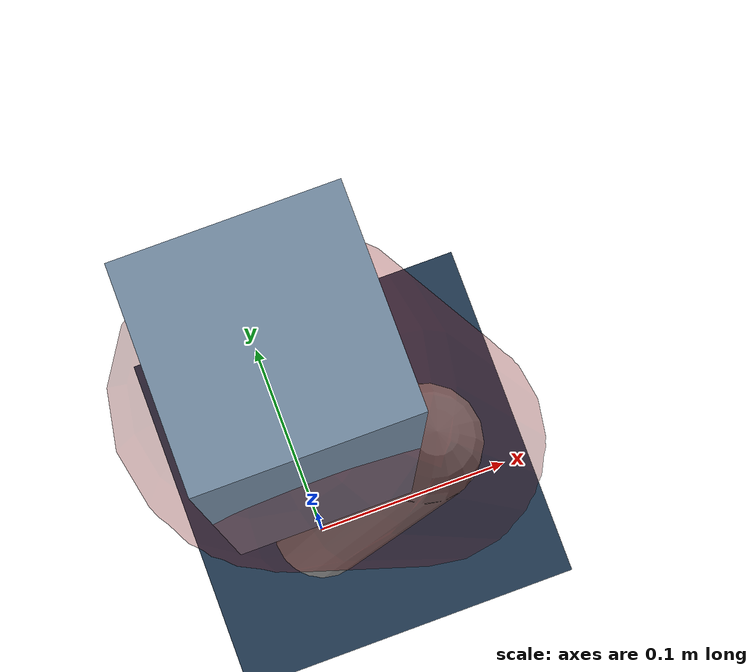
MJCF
<mujoco model="Hopper2D">
	<compiler inertiafromgeom="true" angle="radian" />
	<option timestep="0.001" integrator="implicit" cone="elliptic" solver="Newton" tolerance="1e-10" />

	<default>
		<geom contype="1" conaffinity="1" condim="3" friction="2 0.005 0.0001" solref="0.005 1" />
		<joint limited="true" damping="0.1" />
	</default>

	<asset>
		<texture name="skybox" type="skybox" builtin="gradient" rgb1=".4 .6 .8" rgb2="0 0 0" width="800" height="800" />
		<texture name="grid" type="2d" builtin="checker" rgb1=".1 .2 .3" rgb2=".2 .3 .4" width="300" height="300" mark="edge" markrgb=".2 .3 .4" />
		<material name="ground" texture="grid" texrepeat="1 1" texuniform="true" reflectance="0.1" />
		<material name="leg" rgba="0.5 0.6 0.7 1" />
	</asset>

	<worldbody>

		<geom name="floor" type="plane" size="5 5 0.25" material="ground" />

		<light directional="false" diffuse="0.8 0.8 0.8" specular="0.3 0.3 0.3" pos="0 0 2" dir="0 0 -1" />
		<light mode="targetbodycom" target="base" directional="false" diffuse="0.8 0.8 0.8" specular="0.3 0.3 0.3" pos="0 0 2" dir="0 0 -1" />

		<camera name="fixed" pos="0 -2 1" xyaxes="1 0 0 0 0 1" />
		<camera name="tracking" mode="trackcom" pos="0 -3 1" />

		<body name="root" pos="0 0 0.4879884100315196">
			<joint name="slide_x" type="slide" axis="1 0 0" range="-100 100" />
			<joint name="slide_z" type="slide" axis="0 0 1" range="0 10" />

			<body name="base" pos="0 0 0">
				<geom name="torso" type="box" size="0.03 0.03 0.1" mass="1.7799999999999998" material="leg" />

				<body name="link1" pos="0 0 0" euler="0 1.3793460607755659 0">
					<joint type="hinge" axis="0 -1 0" pos="0 0 0" name="hinge1" limited="true" range="-3.14 3.14" stiffness="0" damping="0.1" />
					<geom name="thigh" type="capsule" fromto="0 0 0 0.2606213619483056 0 0" size="0.05" rgba="0.5 0 0 0.3" mass="0.8840155410655945" />

					<body name="link2" pos="0.2606213619483056 0 0" euler="0 0.40192527093558483 0">
						<joint type="hinge" axis="0 -1 0" pos="0 0 0" name="hinge2" limited="true" range="-3.14 3.14" stiffness="0" damping="0.1" />
						<geom name="shank" type="capsule" fromto="0 0 0 0.23736704808321402 0 0" size="0.025" mass="0.43209363846657123" />

					</body>
				</body>
			</body>
		</body>
	</worldbody>

	<actuator>
		<motor name="torque1" joint="hinge1" ctrlrange="-30.81770487915044 30.81770487915044" ctrllimited="true" gear="1" />
		<motor name="torque2" joint="hinge2" ctrlrange="-13.800254794083342 13.800254794083342" ctrllimited="true" gear="1" />
	</actuator>
</mujoco>
